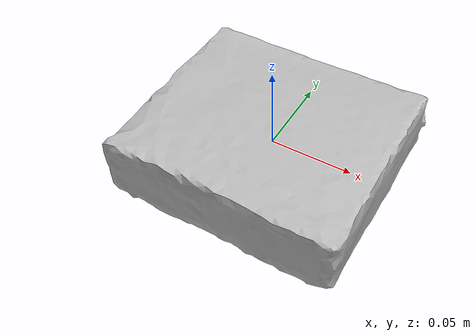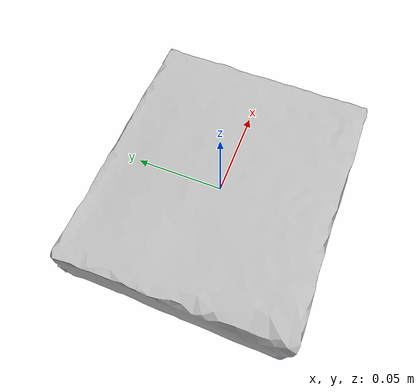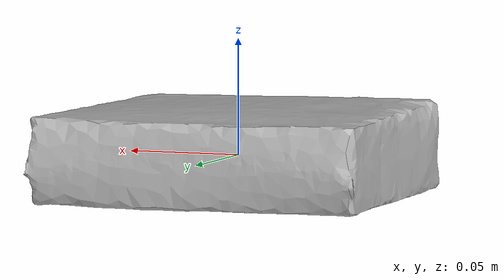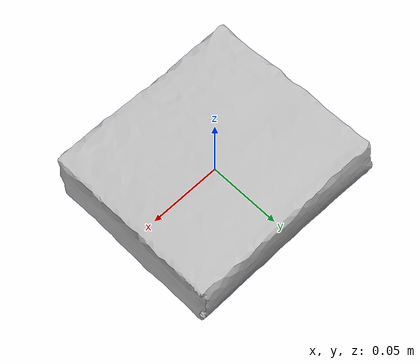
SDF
<?xml version="1.0" ?>
<sdf version="1.4">
  <model name="crayola_64_ct">
    <link name="crayola_64_ct_link">
      <inertial>
        <pose>0.0 0.0 0.0 0 0 0</pose>
        <mass>0.5</mass>
        <inertia>
          <ixx>0.0017708</ixx>
          <ixy>0.001</ixy>
          <ixz>0.001</ixz>
          <izz>0.00104</izz>
          <iyz>0.001</iyz>
          <iyy>0.02604</iyy>
        </inertia>
      </inertial>

      <visual name="crayola_64_ct_visual">
        <pose>0 0 0 0 0 0 </pose>
        <geometry>
          <mesh>
            <uri>model://crayola_64_ct/meshes/crayola_64_ct.dae</uri>
          </mesh>
        </geometry>
      </visual>

      <collision name="crayola_64_ct_collision">
        <pose>0 0 0 0 0 0</pose>
        <geometry>
          <mesh>
            <uri>model://crayola_64_ct/meshes/crayola_64_ct.dae</uri>
          </mesh>
        </geometry>
        <surface>
          <friction>
            <ode>
              <mu>0.8</mu>
              <mu2>0.8</mu2>
              <fdir1>0.0 0.0 0.0</fdir1>
              <slip1>1.0</slip1>
              <slip2>1.0</slip2>
            </ode>
          </friction>
        </surface>
      </collision>

    </link>
    <static>true</static>
  </model>
</sdf>
